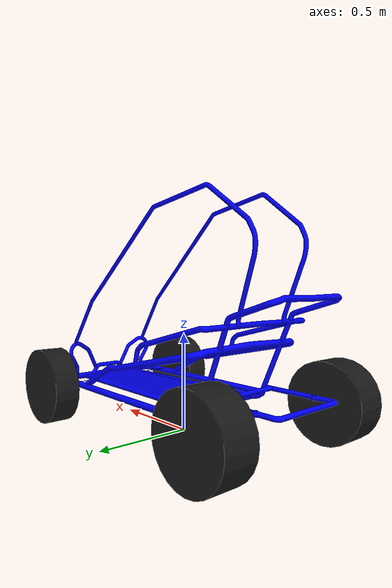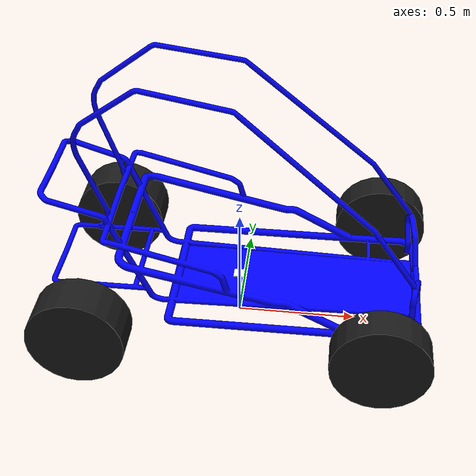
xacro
<?xml version="1.0"?>
<robot name="ackermann_drive" xmlns:xacro="http://ros.org/wiki/xacro">

    <xacro:property name="base_width" value="1.041"/>
    <xacro:property name="base_length" value="1.892"/>
    <xacro:property name="base_height" value="0.626"/>

    <xacro:property name="front_wheel_radius" value="0.2"/>
    <xacro:property name="front_wheel_width" value="0.13"/>
    <xacro:property name="rear_wheel_radius" value="0.2"/>
    <xacro:property name="rear_wheel_width" value="0.17"/>

    <xacro:include filename="inertia_macros.xacro"/>

    <!-- Colors -->
    <material name="White">
        <color rgba="1.0 1.0 1.0 1.0"/>
    </material>
    <material name="Blue">
        <color rgba="0.0 0.0 1.0 1.0"/>
    </material>
    <material name="Gray">
        <color rgba="0.5 0.5 0.5 1.0"/>
    </material>
    <material name="Black">
        <color rgba="0.1 0.1 0.1 1"/>
    </material>
    <material name="Cyan">
        <color rgba="0 1.0 1.0 1.0"/>
    </material>
    <material name="Red">
        <color rgba="1 0 0 1.0"/>
    </material>

    <link name="base_link" />

    <!-- Chassis -->
    <link name="chassis">

        <visual>
        <origin xyz="0 -0.01 0" rpy="0 0 0" />
            <geometry>
                <mesh filename="package://robot_description/description/meshes/new_car_chassis.stl" scale="0.58 0.5 0.58"/>
            </geometry>
            <material name="Blue"/>
        </visual>

        <collision>
        </collision>
        <!-- make box slightly smaller than actual to prevent accidental self collision y=0.92-->
        <xacro:inertia_box mass="150" x="1.65" y="0.92" z="1.13">
            <origin rpy="0 -0.01 0" xyz="0 0 0"/>
        </xacro:inertia_box>
    </link>

    <joint name="chassis_joint" type="fixed">
        <origin xyz="0 0 0.2" rpy="0 0 0" />
        <parent link="base_link" />
        <child link="chassis" />
    </joint>

    <!-- rear left wheel Link -->
    <link name="rear_left_wheel">
        <visual>
            <geometry>
                <cylinder radius="${rear_wheel_radius}" length="${rear_wheel_width}"/>
            </geometry>
            <material name="Black"/>
        </visual>
        <collision>
            <geometry>
                <cylinder radius="${rear_wheel_radius}" length="${rear_wheel_width}"/>
            </geometry>
        </collision>
        <xacro:inertia_cylinder mass="6.8" length="0.17" radius="0.2">
            <origin xyz="-0.6 0.42 0" rpy="-1.57 0 0"/>
        </xacro:inertia_cylinder>
    </link>

    <joint name="rear_left_wheel_joint" type="continuous">
        <origin xyz="-0.6 0.42 0" rpy="-1.57 0 0"/>
        <parent link="chassis" />
        <child link="rear_left_wheel" />
        <axis xyz="0 0 1" />
        <dynamics damping="0.2" />
    </joint>

    <!-- rear right wheel Link -->
    <link name="rear_right_wheel">
        <visual>
            <geometry>
                <cylinder radius="${rear_wheel_radius}" length="${rear_wheel_width}"/>
            </geometry>
            <material name="Black"/>
        </visual>
        <collision>
            <geometry>
                <cylinder radius="${rear_wheel_radius}" length="${rear_wheel_width}"/>
            </geometry>
        </collision>
        <xacro:inertia_cylinder mass="6.8" length="0.17" radius="0.2">
            <origin xyz="-0.6 -0.42 0" rpy="-1.57 0 0" />
        </xacro:inertia_cylinder>
    </link>

    <joint name="rear_right_wheel_joint" type="continuous">
        <origin xyz="-0.6 -0.42 0" rpy="-1.57 0 0" />
        <parent link="chassis" />
        <child link="rear_right_wheel" />
        <axis xyz="0 0 1" />
        <dynamics damping="0.2" />
    </joint>

    <!-- left steer Link -->
    <link name="left_wheel_steering">
        <inertial>
            <mass value="0.1"/>
            <inertia ixx="0" ixy="0.0" ixz="0.0" iyy="0.0" iyz="0.0" izz="0.0" />
        </inertial>
    </link>

    <joint name="left_wheel_steering_joint" type="revolute">
        <origin xyz="0.6 0.45 0" rpy="1.57 0 0"/>
        <parent link="chassis"/>
        <child link="left_wheel_steering"/>
        <axis xyz="0 1 0"/>
        <dynamics damping="0.2"/>
        <!-- effort = torque (N/m) Lower/upper = steering angle rad-->
        <limit effort="100.0" lower="-0.785" upper="0.785" velocity="30"/>
    </joint>

    <!-- right steer Link -->
    <link name="right_wheel_steering">
        <inertial>
            <mass value="0.1"/>
            <inertia ixx="0" ixy="0.0" ixz="0.0" iyy="0.0" iyz="0.0" izz="0.0" />
        </inertial>
    </link>

    <joint name="right_wheel_steering_joint" type="revolute">
        <origin xyz="0.6 -0.45 0" rpy="1.57 0 0"/>
        <parent link="chassis"/>
        <child link="right_wheel_steering"/>
        <axis xyz="0 1 0"/>
        <dynamics damping="0.2"/>
        <!-- effort = torque (N/m) Lower/upper = steering angle rad-->
        <limit effort="100.0" lower="-0.785" upper="0.785" velocity="30"/>
    </joint>

    <!-- front left wheel Link -->
    <link name="front_left_wheel">
         <visual>
            <geometry>
                <cylinder radius="${front_wheel_radius}" length="${front_wheel_width}"/>
            </geometry>
            <material name="Black"/>
        </visual>
        <collision>
            <geometry>
                <cylinder radius="${front_wheel_radius}" length="${front_wheel_width}"/>
            </geometry>
        </collision>
        <xacro:inertia_cylinder mass="4.5" length="0.13" radius="0.2">
            <origin xyz="0.6 0.45 0" rpy="1.57 0 0"/>
        </xacro:inertia_cylinder>
    </link>

    <joint name="front_left_wheel_joint" type="continuous">
        <origin xyz="0 0 0" rpy="0 0 0" />
        <parent link="left_wheel_steering" />
        <child link="front_left_wheel" />
        <axis xyz="0 0 1" />
        <dynamics damping="0.2" />
    </joint>

    <!-- front right wheel Link -->
    <link name="front_right_wheel">
        <visual>
            <geometry>
                <cylinder radius="${front_wheel_radius}" length="${front_wheel_width}"/>
            </geometry>
            <material name="Black"/>
        </visual>
        <collision>
            <geometry>
                <cylinder radius="${front_wheel_radius}" length="${front_wheel_width}"/>
            </geometry>
        </collision>
        <xacro:inertia_cylinder mass="4.5" length="0.13" radius="0.2">
            <origin xyz="0.6 -0.45 0" rpy="1.57 0 0"/>
        </xacro:inertia_cylinder>
    </link>

    <joint name="front_right_wheel_joint" type="continuous">
        <origin xyz="0 0 0" rpy="0 0 0" />
        <parent link="right_wheel_steering" />
        <child link="front_right_wheel" />
        <axis xyz="0 0 1" />
        <dynamics damping="0.2" />
    </joint>

    <!-- IMU -->
    <joint name="imu_joint" type="fixed">
        <origin xyz="0 0 0" rpy="0 0 0" />
        <parent link="chassis" />
        <child link="imu_link" />
    </joint>
    <link name="imu_link">
        <pose>0 0 0 0 0 0</pose>  <!-- Adjust height based on your vehicle -->
        <visual>
            <geometry>
                <box size ="0.05 0.05 0.01"/>
            </geometry>
            <material name ="White"/>
        </visual>
    </link>
</robot>

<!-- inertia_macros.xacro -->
<robot xmlns:xacro="http://www.ros.org/wiki/xacro" >

    <!-- Specify some standard inertial calculations https://en.wikipedia.org/wiki/List_of_moments_of_inertia -->
    <!-- These make use of xacro's mathematical functionality -->

  <xacro:macro name="inertia_sphere" params="mass radius *origin">
      <inertial>
          <xacro:insert_block name="origin"/>
          <mass value="${mass}" />
          <inertia ixx="${(2/5) * mass * (radius*radius)}" ixy="0.0" ixz="0.0"
                  iyy="${(2/5) * mass * (radius*radius)}" iyz="0.0"
                  izz="${(2/5) * mass * (radius*radius)}" />
      </inertial>
  </xacro:macro>

  <xacro:macro name="inertia_box" params="mass x y z *origin">
      <inertial>
          <xacro:insert_block name="origin"/>
          <mass value="${mass}" />
          <inertia ixx="${(1/12) * mass * (y*y+z*z)}" ixy="0.0" ixz="0.0"
                  iyy="${(1/12) * mass * (x*x+z*z)}" iyz="0.0"
                  izz="${(1/12) * mass * (x*x+y*y)}" />
      </inertial>
  </xacro:macro>

  <xacro:macro name="inertia_cylinder" params="mass length radius *origin">
      <inertial>
          <xacro:insert_block name="origin"/>
          <mass value="${mass}" />
          <inertia ixx="${(1/12) * mass * (3*radius*radius + length*length)}" ixy="0.0" ixz="0.0"
                  iyy="${(1/12) * mass * (3*radius*radius + length*length)}" iyz="0.0"
                  izz="${(1/2) * mass * (radius*radius)}" />
      </inertial>
  </xacro:macro>

  <xacro:macro name="box_inertia" params="m w h d">
    <inertial>
      <origin xyz="0 0 0" rpy="${pi/2} 0 ${pi/2}"/>
      <mass value="${m}"/>
      <inertia ixx="${(m/12) * (h*h + d*d)}" ixy="0.0" ixz="0.0" iyy="${(m/12) * (w*w + d*d)}" iyz="0.0" izz="${(m/12) * (w*w + h*h)}"/>
    </inertial>
  </xacro:macro>

  <xacro:macro name="cylinder_inertia" params="m r h">
    <inertial>
      <origin xyz="0 0 0" rpy="${pi/2} 0 0" />
      <mass value="${m}"/>
      <inertia ixx="${(m/12) * (3*r*r + h*h)}" ixy = "0" ixz = "0" iyy="${(m/12) * (3*r*r + h*h)}" iyz = "0" izz="${(m/2) * (r*r)}"/>
    </inertial>
  </xacro:macro>
</robot>
